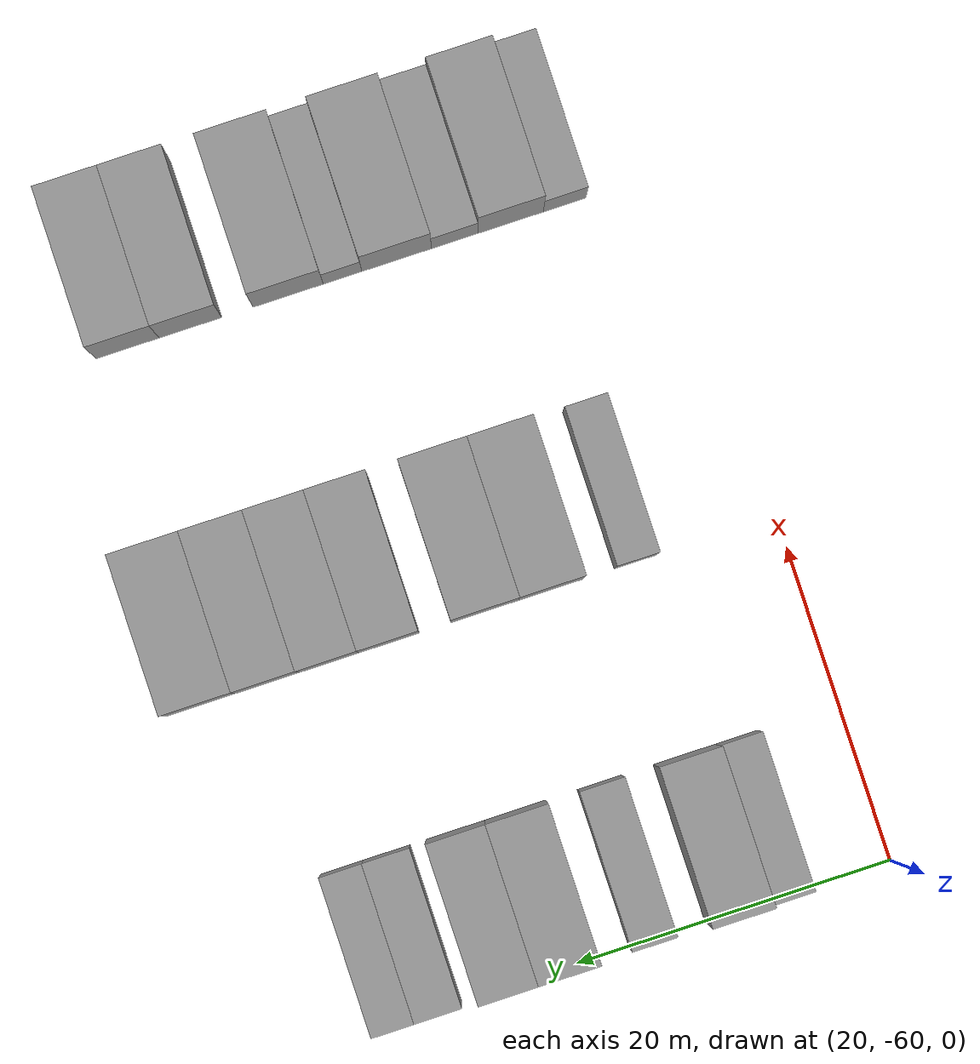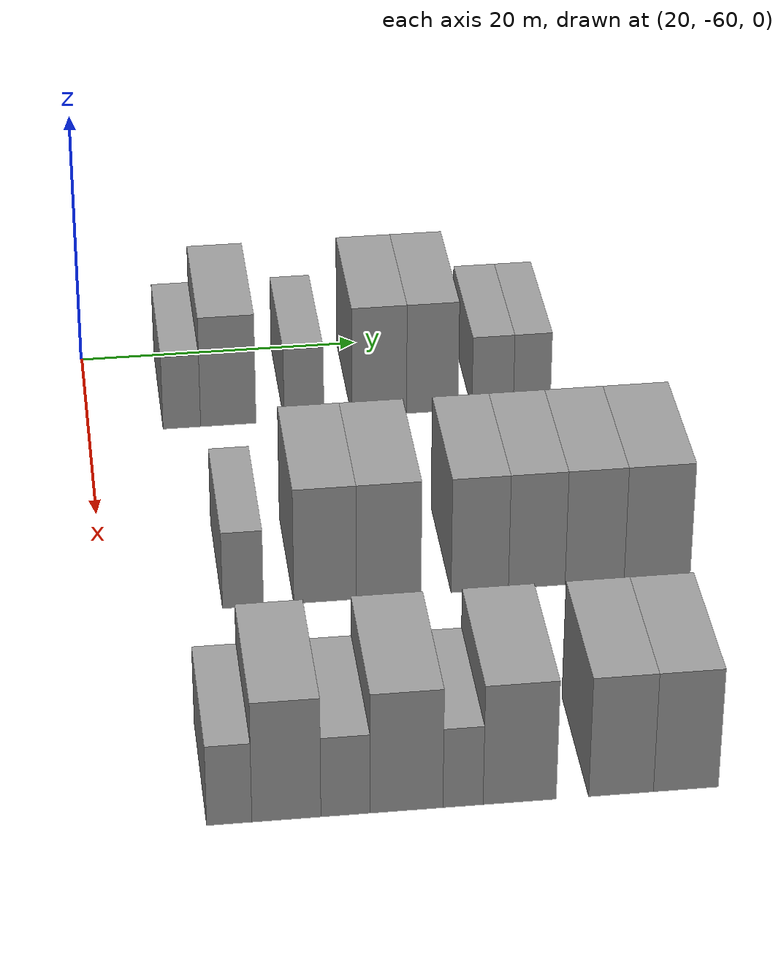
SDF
<sdf version="1.6">
 <world name="default">
  <model name="building_45">
   <static>1</static>
   <pose>25.0000 -53.4133 0 0.000000 0.000000 0.000000</pose>
   <link name="link">
    <pose>0 0 3.00 0 0 0</pose>
    <collision name="collision"><geometry><box><size>10.0000 2.6660 6.0000</size></box></geometry></collision>
    <visual name="visual">
     <cast_shadows>0</cast_shadows>
     <geometry><box><size>10.0000 2.6660 6.0000</size></box></geometry>
     <material>
      <script>
       <uri>model://grey_wall/materials/scripts</uri>
       <uri>model://grey_wall/materials/textures</uri>
       <name>vrc/grey_wall</name>
      </script>
     </material>
    </visual>
   </link>
  </model>
  <model name="building_46">
   <static>1</static>
   <pose>25.0000 -50.1086 0 0.000000 0.000000 0.000000</pose>
   <link name="link">
    <pose>0 0 4.50 0 0 0</pose>
    <collision name="collision"><geometry><box><size>10.0000 3.9434 9.0000</size></box></geometry></collision>
    <visual name="visual">
     <cast_shadows>0</cast_shadows>
     <geometry><box><size>10.0000 3.9434 9.0000</size></box></geometry>
     <material>
      <script>
       <uri>model://grey_wall/materials/scripts</uri>
       <uri>model://grey_wall/materials/textures</uri>
       <name>vrc/grey_wall</name>
      </script>
     </material>
    </visual>
   </link>
  </model>
  <model name="building_47">
   <static>1</static>
   <pose>25.0000 -44.7140 0 0.000000 0.000000 0.000000</pose>
   <link name="link">
    <pose>0 0 3.00 0 0 0</pose>
    <collision name="collision"><geometry><box><size>10.0000 2.8458 6.0000</size></box></geometry></collision>
    <visual name="visual">
     <cast_shadows>0</cast_shadows>
     <geometry><box><size>10.0000 2.8458 6.0000</size></box></geometry>
     <material>
      <script>
       <uri>model://grey_wall/materials/scripts</uri>
       <uri>model://grey_wall/materials/textures</uri>
       <name>vrc/grey_wall</name>
      </script>
     </material>
    </visual>
   </link>
  </model>
  <model name="building_48">
   <static>1</static>
   <pose>25.0000 -39.3300 0 0.000000 0.000000 0.000000</pose>
   <link name="link">
    <pose>0 0 4.50 0 0 0</pose>
    <collision name="collision"><geometry><box><size>10.0000 3.9221 9.0000</size></box></geometry></collision>
    <visual name="visual">
     <cast_shadows>0</cast_shadows>
     <geometry><box><size>10.0000 3.9221 9.0000</size></box></geometry>
     <material>
      <script>
       <uri>model://grey_wall/materials/scripts</uri>
       <uri>model://grey_wall/materials/textures</uri>
       <name>vrc/grey_wall</name>
      </script>
     </material>
    </visual>
   </link>
  </model>
  <model name="building_49">
   <static>1</static>
   <pose>25.0000 -35.5136 0 0.000000 0.000000 0.000000</pose>
   <link name="link">
    <pose>0 0 4.50 0 0 0</pose>
    <collision name="collision"><geometry><box><size>10.0000 3.7106 9.0000</size></box></geometry></collision>
    <visual name="visual">
     <cast_shadows>0</cast_shadows>
     <geometry><box><size>10.0000 3.7106 9.0000</size></box></geometry>
     <material>
      <script>
       <uri>model://grey_wall/materials/scripts</uri>
       <uri>model://grey_wall/materials/textures</uri>
       <name>vrc/grey_wall</name>
      </script>
     </material>
    </visual>
   </link>
  </model>
  <model name="building_50">
   <static>1</static>
   <pose>25.0000 -31.1652 0 0.000000 0.000000 0.000000</pose>
   <link name="link">
    <pose>0 0 3.00 0 0 0</pose>
    <collision name="collision"><geometry><box><size>10.0000 2.9862 6.0000</size></box></geometry></collision>
    <visual name="visual">
     <cast_shadows>0</cast_shadows>
     <geometry><box><size>10.0000 2.9862 6.0000</size></box></geometry>
     <material>
      <script>
       <uri>model://grey_wall/materials/scripts</uri>
       <uri>model://grey_wall/materials/textures</uri>
       <name>vrc/grey_wall</name>
      </script>
     </material>
    </visual>
   </link>
  </model>
  <model name="building_51">
   <static>1</static>
   <pose>25.0000 -28.3309 0 0.000000 0.000000 0.000000</pose>
   <link name="link">
    <pose>0 0 3.00 0 0 0</pose>
    <collision name="collision"><geometry><box><size>10.0000 2.6824 6.0000</size></box></geometry></collision>
    <visual name="visual">
     <cast_shadows>0</cast_shadows>
     <geometry><box><size>10.0000 2.6824 6.0000</size></box></geometry>
     <material>
      <script>
       <uri>model://grey_wall/materials/scripts</uri>
       <uri>model://grey_wall/materials/textures</uri>
       <name>vrc/grey_wall</name>
      </script>
     </material>
    </visual>
   </link>
  </model>
  <model name="building_165">
   <static>1</static>
   <pose>47.0000 -50.9749 0 0.000000 0.000000 0.000000</pose>
   <link name="link">
    <pose>0 0 3.00 0 0 0</pose>
    <collision name="collision"><geometry><box><size>10.0000 2.6981 6.0000</size></box></geometry></collision>
    <visual name="visual">
     <cast_shadows>0</cast_shadows>
     <geometry><box><size>10.0000 2.6981 6.0000</size></box></geometry>
     <material>
      <script>
       <uri>model://grey_wall/materials/scripts</uri>
       <uri>model://grey_wall/materials/textures</uri>
       <name>vrc/grey_wall</name>
      </script>
     </material>
    </visual>
   </link>
  </model>
  <model name="building_166">
   <static>1</static>
   <pose>47.0000 -45.5575 0 0.000000 0.000000 0.000000</pose>
   <link name="link">
    <pose>0 0 4.50 0 0 0</pose>
    <collision name="collision"><geometry><box><size>10.0000 4.1367 9.0000</size></box></geometry></collision>
    <visual name="visual">
     <cast_shadows>0</cast_shadows>
     <geometry><box><size>10.0000 4.1367 9.0000</size></box></geometry>
     <material>
      <script>
       <uri>model://grey_wall/materials/scripts</uri>
       <uri>model://grey_wall/materials/textures</uri>
       <name>vrc/grey_wall</name>
      </script>
     </material>
    </visual>
   </link>
  </model>
  <model name="building_167">
   <static>1</static>
   <pose>47.0000 -41.3402 0 0.000000 0.000000 0.000000</pose>
   <link name="link">
    <pose>0 0 4.50 0 0 0</pose>
    <collision name="collision"><geometry><box><size>10.0000 4.2979 9.0000</size></box></geometry></collision>
    <visual name="visual">
     <cast_shadows>0</cast_shadows>
     <geometry><box><size>10.0000 4.2979 9.0000</size></box></geometry>
     <material>
      <script>
       <uri>model://grey_wall/materials/scripts</uri>
       <uri>model://grey_wall/materials/textures</uri>
       <name>vrc/grey_wall</name>
      </script>
     </material>
    </visual>
   </link>
  </model>
  <model name="building_168">
   <static>1</static>
   <pose>47.0000 -35.2771 0 0.000000 0.000000 0.000000</pose>
   <link name="link">
    <pose>0 0 4.50 0 0 0</pose>
    <collision name="collision"><geometry><box><size>10.0000 3.8282 9.0000</size></box></geometry></collision>
    <visual name="visual">
     <cast_shadows>0</cast_shadows>
     <geometry><box><size>10.0000 3.8282 9.0000</size></box></geometry>
     <material>
      <script>
       <uri>model://grey_wall/materials/scripts</uri>
       <uri>model://grey_wall/materials/textures</uri>
       <name>vrc/grey_wall</name>
      </script>
     </material>
    </visual>
   </link>
  </model>
  <model name="building_169">
   <static>1</static>
   <pose>47.0000 -31.4655 0 0.000000 0.000000 0.000000</pose>
   <link name="link">
    <pose>0 0 4.50 0 0 0</pose>
    <collision name="collision"><geometry><box><size>10.0000 3.7950 9.0000</size></box></geometry></collision>
    <visual name="visual">
     <cast_shadows>0</cast_shadows>
     <geometry><box><size>10.0000 3.7950 9.0000</size></box></geometry>
     <material>
      <script>
       <uri>model://grey_wall/materials/scripts</uri>
       <uri>model://grey_wall/materials/textures</uri>
       <name>vrc/grey_wall</name>
      </script>
     </material>
    </visual>
   </link>
  </model>
  <model name="building_170">
   <static>1</static>
   <pose>47.0000 -27.5836 0 0.000000 0.000000 0.000000</pose>
   <link name="link">
    <pose>0 0 4.50 0 0 0</pose>
    <collision name="collision"><geometry><box><size>10.0000 3.9688 9.0000</size></box></geometry></collision>
    <visual name="visual">
     <cast_shadows>0</cast_shadows>
     <geometry><box><size>10.0000 3.9688 9.0000</size></box></geometry>
     <material>
      <script>
       <uri>model://grey_wall/materials/scripts</uri>
       <uri>model://grey_wall/materials/textures</uri>
       <name>vrc/grey_wall</name>
      </script>
     </material>
    </visual>
   </link>
  </model>
  <model name="building_171">
   <static>1</static>
   <pose>47.0000 -23.3705 0 0.000000 0.000000 0.000000</pose>
   <link name="link">
    <pose>0 0 4.50 0 0 0</pose>
    <collision name="collision"><geometry><box><size>10.0000 4.4574 9.0000</size></box></geometry></collision>
    <visual name="visual">
     <cast_shadows>0</cast_shadows>
     <geometry><box><size>10.0000 4.4574 9.0000</size></box></geometry>
     <material>
      <script>
       <uri>model://grey_wall/materials/scripts</uri>
       <uri>model://grey_wall/materials/textures</uri>
       <name>vrc/grey_wall</name>
      </script>
     </material>
    </visual>
   </link>
  </model>
  <model name="building_285">
   <static>1</static>
   <pose>69.0000 -53.7158 0 0.000000 0.000000 0.000000</pose>
   <link name="link">
    <pose>0 0 3.00 0 0 0</pose>
    <collision name="collision"><geometry><box><size>10.0000 2.7365 6.0000</size></box></geometry></collision>
    <visual name="visual">
     <cast_shadows>0</cast_shadows>
     <geometry><box><size>10.0000 2.7365 6.0000</size></box></geometry>
     <material>
      <script>
       <uri>model://grey_wall/materials/scripts</uri>
       <uri>model://grey_wall/materials/textures</uri>
       <name>vrc/grey_wall</name>
      </script>
     </material>
    </visual>
   </link>
  </model>
  <model name="building_286">
   <static>1</static>
   <pose>69.0000 -50.2548 0 0.000000 0.000000 0.000000</pose>
   <link name="link">
    <pose>0 0 4.50 0 0 0</pose>
    <collision name="collision"><geometry><box><size>10.0000 4.1856 9.0000</size></box></geometry></collision>
    <visual name="visual">
     <cast_shadows>0</cast_shadows>
     <geometry><box><size>10.0000 4.1856 9.0000</size></box></geometry>
     <material>
      <script>
       <uri>model://grey_wall/materials/scripts</uri>
       <uri>model://grey_wall/materials/textures</uri>
       <name>vrc/grey_wall</name>
      </script>
     </material>
    </visual>
   </link>
  </model>
  <model name="building_287">
   <static>1</static>
   <pose>69.0000 -46.6688 0 0.000000 0.000000 0.000000</pose>
   <link name="link">
    <pose>0 0 3.00 0 0 0</pose>
    <collision name="collision"><geometry><box><size>10.0000 2.9864 6.0000</size></box></geometry></collision>
    <visual name="visual">
     <cast_shadows>0</cast_shadows>
     <geometry><box><size>10.0000 2.9864 6.0000</size></box></geometry>
     <material>
      <script>
       <uri>model://grey_wall/materials/scripts</uri>
       <uri>model://grey_wall/materials/textures</uri>
       <name>vrc/grey_wall</name>
      </script>
     </material>
    </visual>
   </link>
  </model>
  <model name="building_288">
   <static>1</static>
   <pose>69.0000 -42.9496 0 0.000000 0.000000 0.000000</pose>
   <link name="link">
    <pose>0 0 4.50 0 0 0</pose>
    <collision name="collision"><geometry><box><size>10.0000 4.4519 9.0000</size></box></geometry></collision>
    <visual name="visual">
     <cast_shadows>0</cast_shadows>
     <geometry><box><size>10.0000 4.4519 9.0000</size></box></geometry>
     <material>
      <script>
       <uri>model://grey_wall/materials/scripts</uri>
       <uri>model://grey_wall/materials/textures</uri>
       <name>vrc/grey_wall</name>
      </script>
     </material>
    </visual>
   </link>
  </model>
  <model name="building_289">
   <static>1</static>
   <pose>69.0000 -39.4923 0 0.000000 0.000000 0.000000</pose>
   <link name="link">
    <pose>0 0 3.00 0 0 0</pose>
    <collision name="collision"><geometry><box><size>10.0000 2.4628 6.0000</size></box></geometry></collision>
    <visual name="visual">
     <cast_shadows>0</cast_shadows>
     <geometry><box><size>10.0000 2.4628 6.0000</size></box></geometry>
     <material>
      <script>
       <uri>model://grey_wall/materials/scripts</uri>
       <uri>model://grey_wall/materials/textures</uri>
       <name>vrc/grey_wall</name>
      </script>
     </material>
    </visual>
   </link>
  </model>
  <model name="building_290">
   <static>1</static>
   <pose>69.0000 -36.0116 0 0.000000 0.000000 0.000000</pose>
   <link name="link">
    <pose>0 0 4.50 0 0 0</pose>
    <collision name="collision"><geometry><box><size>10.0000 4.4986 9.0000</size></box></geometry></collision>
    <visual name="visual">
     <cast_shadows>0</cast_shadows>
     <geometry><box><size>10.0000 4.4986 9.0000</size></box></geometry>
     <material>
      <script>
       <uri>model://grey_wall/materials/scripts</uri>
       <uri>model://grey_wall/materials/textures</uri>
       <name>vrc/grey_wall</name>
      </script>
     </material>
    </visual>
   </link>
  </model>
  <model name="building_291">
   <static>1</static>
   <pose>69.0000 -29.7605 0 0.000000 0.000000 0.000000</pose>
   <link name="link">
    <pose>0 0 4.50 0 0 0</pose>
    <collision name="collision"><geometry><box><size>10.0000 4.0036 9.0000</size></box></geometry></collision>
    <visual name="visual">
     <cast_shadows>0</cast_shadows>
     <geometry><box><size>10.0000 4.0036 9.0000</size></box></geometry>
     <material>
      <script>
       <uri>model://grey_wall/materials/scripts</uri>
       <uri>model://grey_wall/materials/textures</uri>
       <name>vrc/grey_wall</name>
      </script>
     </material>
    </visual>
   </link>
  </model>
  <model name="building_292">
   <static>1</static>
   <pose>69.0000 -25.7433 0 0.000000 0.000000 0.000000</pose>
   <link name="link">
    <pose>0 0 4.50 0 0 0</pose>
    <collision name="collision"><geometry><box><size>10.0000 4.0308 9.0000</size></box></geometry></collision>
    <visual name="visual">
     <cast_shadows>0</cast_shadows>
     <geometry><box><size>10.0000 4.0308 9.0000</size></box></geometry>
     <material>
      <script>
       <uri>model://grey_wall/materials/scripts</uri>
       <uri>model://grey_wall/materials/textures</uri>
       <name>vrc/grey_wall</name>
      </script>
     </material>
    </visual>
   </link>
  </model>
 </world>
</sdf>
